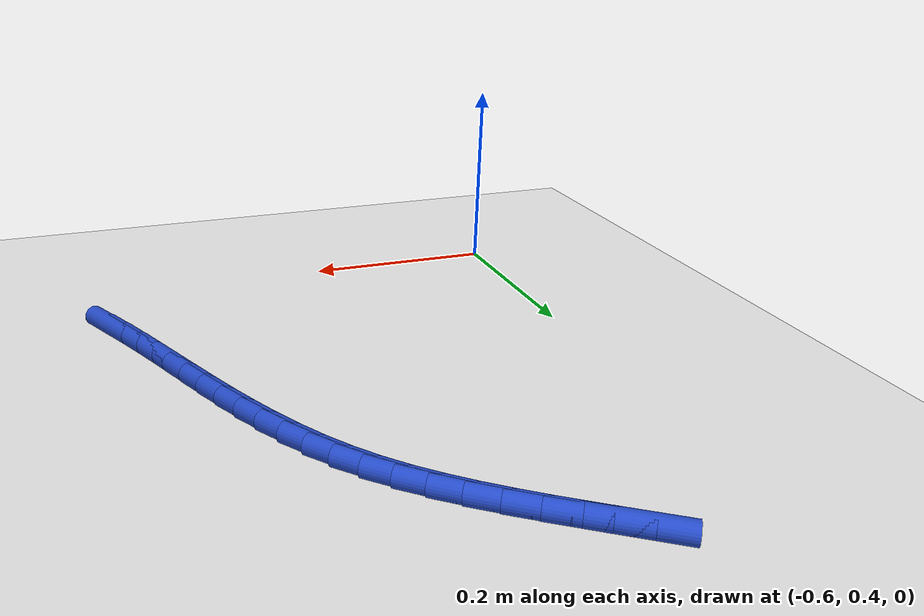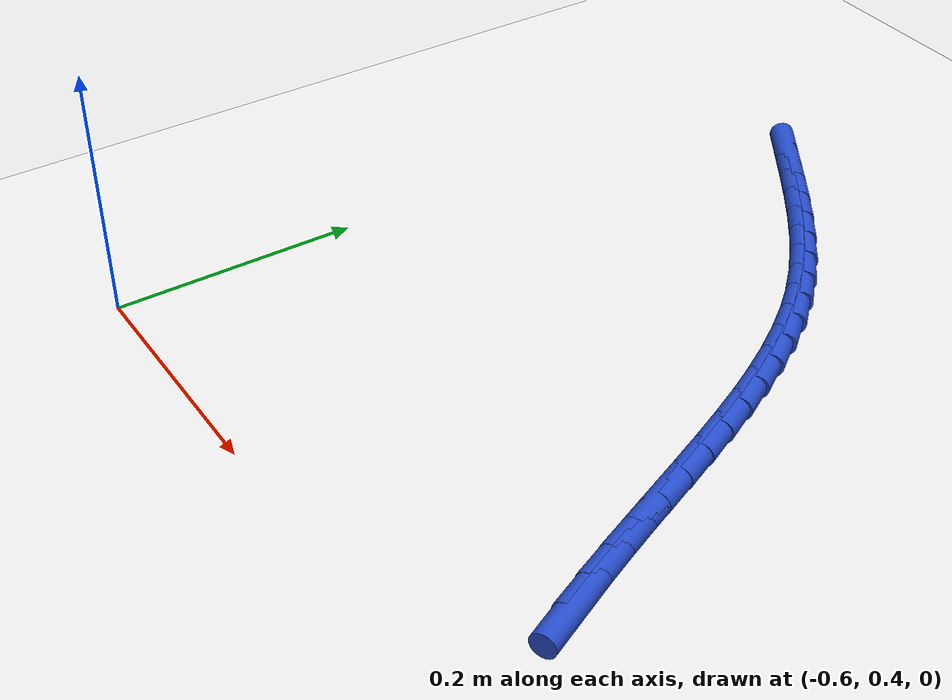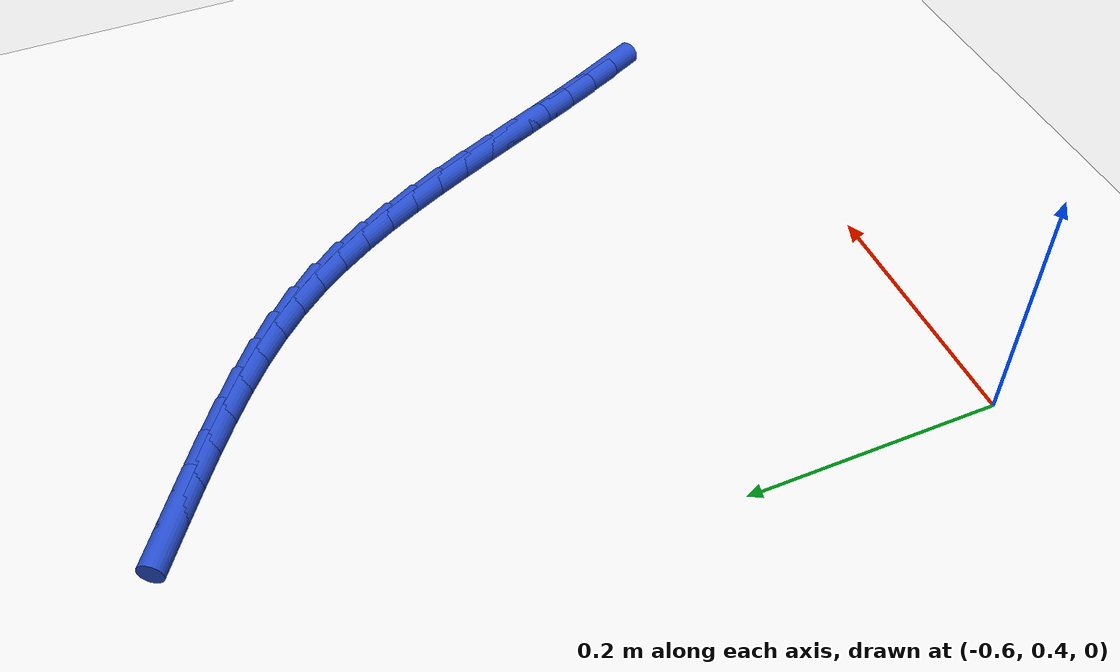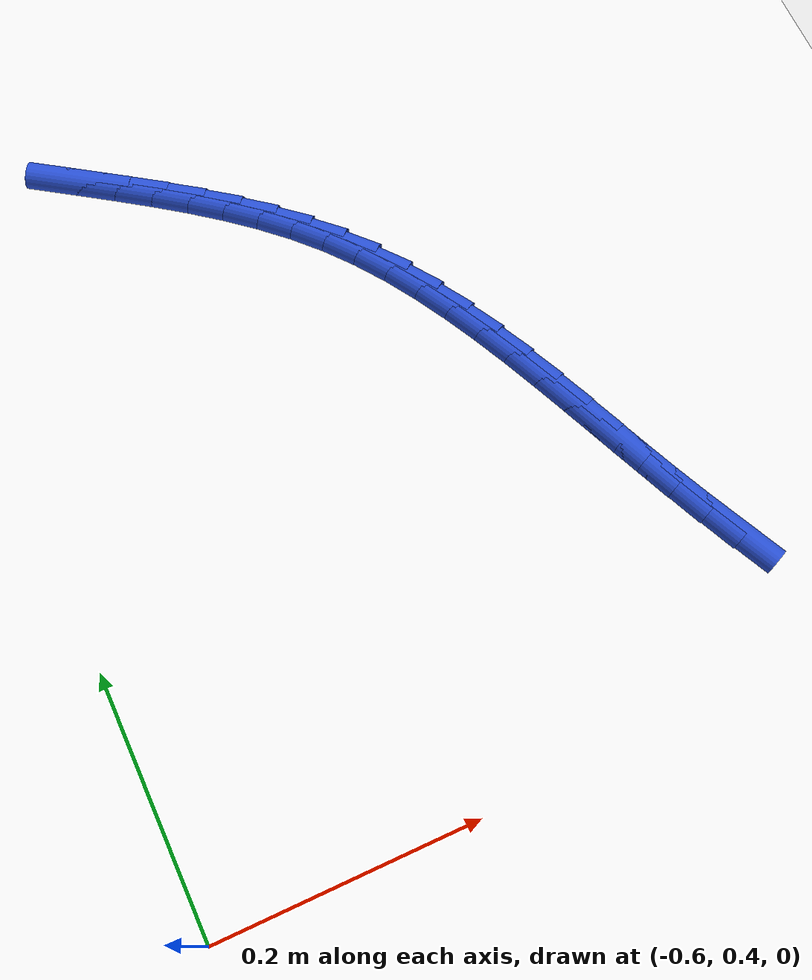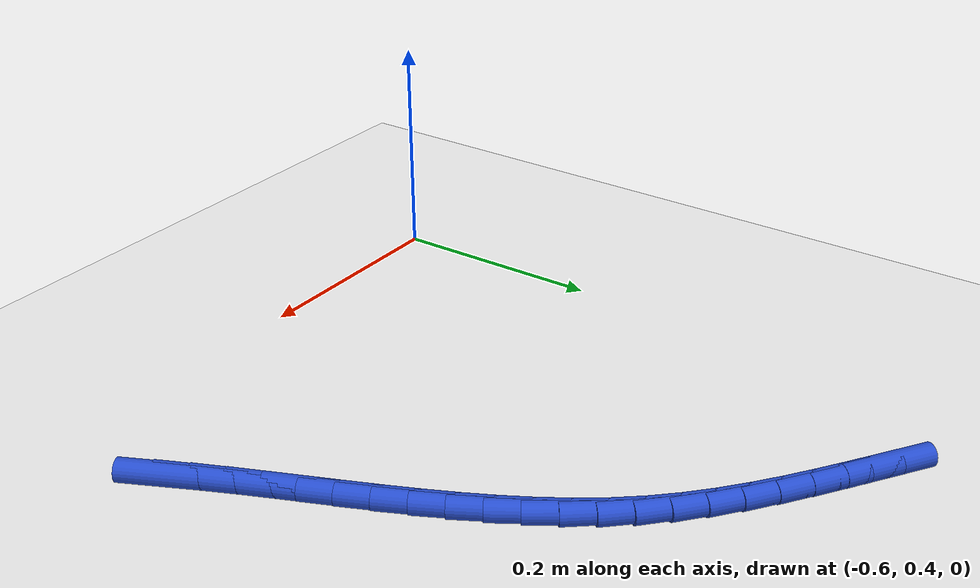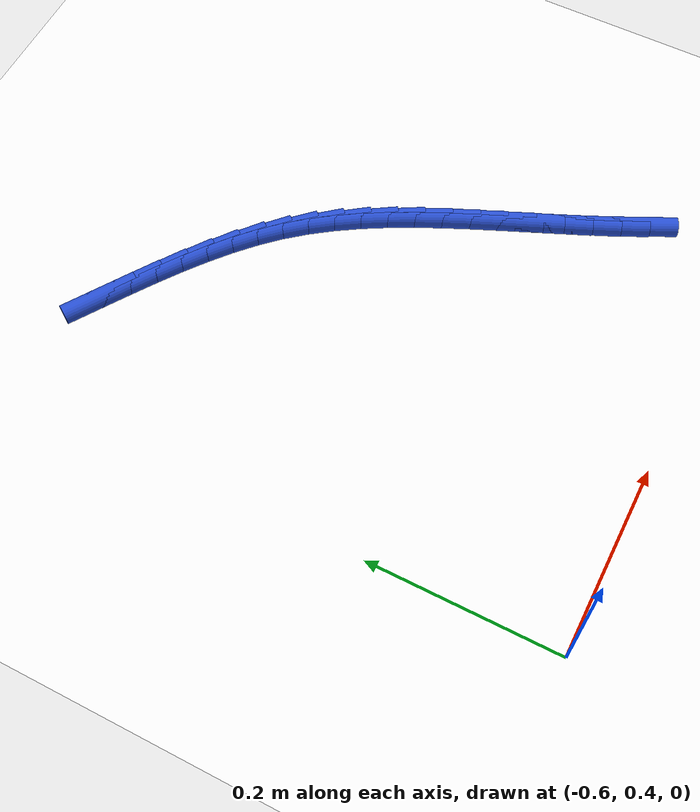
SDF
<sdf version="1.6">
 <world name="default">
  <model name="ground_plane">
   <static>1</static>
   <link name="link">
    <collision name="collision">
     <geometry><plane><normal>0 0 1</normal><size>100 100</size></plane></geometry>
     <surface><friction><ode><mu>100</mu><mu2>50</mu2></ode></friction></surface>
    </collision>
    <visual name="visual">
     <cast_shadows>0</cast_shadows>
     <geometry><plane><normal>0 0 1</normal><size>100 100</size></plane></geometry>
     <material>
      <script><uri>file://media/materials/scripts/gazebo.material</uri><name>Gazebo/WhiteGlow</name></script>
     </material>
    </visual>
   </link>
  </model>
  <model name="line">
   <link name="link_19">
    <pose>-0.15202798051636007 0.5097675520749214 0.01 0 1.57 -1.1237885111083326</pose>
    <collision name="collision">
     <geometry><cylinder><radius>0.01</radius><length>0.08</length></cylinder></geometry>
    </collision>
    <visual name="visual">
     <material>
      <script><name>Gazebo/Blue</name><uri>file://media/materials/scripts/gazebo.material</uri></script>
     </material>
     <geometry><cylinder><radius>0.01</radius><length>0.08</length></cylinder></geometry>
    </visual>
   </link>
   <link name="link_20">
    <pose>-0.1645418085531885 0.5358722899567145 0.01 0 1.57 -1.1443840696282837</pose>
    <collision name="collision">
     <geometry><cylinder><radius>0.01</radius><length>0.08</length></cylinder></geometry>
    </collision>
    <visual name="visual">
     <material>
      <script><name>Gazebo/Blue</name><uri>file://media/materials/scripts/gazebo.material</uri></script>
     </material>
     <geometry><cylinder><radius>0.01</radius><length>0.08</length></cylinder></geometry>
    </visual>
   </link>
   <link name="link_21">
    <pose>-0.17656451619382074 0.5623373662047823 0.01 0 1.57 -1.1601407667916381</pose>
    <collision name="collision">
     <geometry><cylinder><radius>0.01</radius><length>0.08</length></cylinder></geometry>
    </collision>
    <visual name="visual">
     <material>
      <script><name>Gazebo/Blue</name><uri>file://media/materials/scripts/gazebo.material</uri></script>
     </material>
     <geometry><cylinder><radius>0.01</radius><length>0.08</length></cylinder></geometry>
    </visual>
   </link>
   <link name="link_22">
    <pose>-0.18820005609602605 0.589060495800236 0.01 0 1.57 -1.1683401843044885</pose>
    <collision name="collision">
     <geometry><cylinder><radius>0.01</radius><length>0.08</length></cylinder></geometry>
    </collision>
    <visual name="visual">
     <material>
      <script><name>Gazebo/Blue</name><uri>file://media/materials/scripts/gazebo.material</uri></script>
     </material>
     <geometry><cylinder><radius>0.01</radius><length>0.08</length></cylinder></geometry>
    </visual>
   </link>
   <link name="link_23">
    <pose>-0.19962197544693255 0.615891948713402 0.01 0 1.57 -1.1690486684555863</pose>
    <collision name="collision">
     <geometry><cylinder><radius>0.01</radius><length>0.08</length></cylinder></geometry>
    </collision>
    <visual name="visual">
     <material>
      <script><name>Gazebo/Blue</name><uri>file://media/materials/scripts/gazebo.material</uri></script>
     </material>
     <geometry><cylinder><radius>0.01</radius><length>0.08</length></cylinder></geometry>
    </visual>
   </link>
   <link name="link_24">
    <pose>-0.211003847665836 0.6426819770312251 0.01 0 1.57 -1.1622295150099458</pose>
    <collision name="collision">
     <geometry><cylinder><radius>0.01</radius><length>0.08</length></cylinder></geometry>
    </collision>
    <visual name="visual">
     <material>
      <script><name>Gazebo/Blue</name><uri>file://media/materials/scripts/gazebo.material</uri></script>
     </material>
     <geometry><cylinder><radius>0.01</radius><length>0.08</length></cylinder></geometry>
    </visual>
   </link>
   <link name="link_25">
    <pose>-0.22251924617203203 0.6692808328406501 0.01 0 1.57 -1.1477388641497936</pose>
    <collision name="collision">
     <geometry><cylinder><radius>0.01</radius><length>0.08</length></cylinder></geometry>
    </collision>
    <visual name="visual">
     <material>
      <script><name>Gazebo/Blue</name><uri>file://media/materials/scripts/gazebo.material</uri></script>
     </material>
     <geometry><cylinder><radius>0.01</radius><length>0.08</length></cylinder></geometry>
    </visual>
   </link>
   <link name="link_26">
    <pose>-0.23434174438481659 0.6955387682286218 0.01 0 1.57 -1.1253322727199992</pose>
    <collision name="collision">
     <geometry><cylinder><radius>0.01</radius><length>0.08</length></cylinder></geometry>
    </collision>
    <visual name="visual">
     <material>
      <script><name>Gazebo/Blue</name><uri>file://media/materials/scripts/gazebo.material</uri></script>
     </material>
     <geometry><cylinder><radius>0.01</radius><length>0.08</length></cylinder></geometry>
    </visual>
   </link>
   <link name="link_27">
    <pose>-0.24664491572348524 0.7213060352820849 0.01 0 1.57 -1.0946834402532364</pose>
    <collision name="collision">
     <geometry><cylinder><radius>0.01</radius><length>0.08</length></cylinder></geometry>
    </collision>
    <visual name="visual">
     <material>
      <script><name>Gazebo/Blue</name><uri>file://media/materials/scripts/gazebo.material</uri></script>
     </material>
     <geometry><cylinder><radius>0.01</radius><length>0.08</length></cylinder></geometry>
    </visual>
   </link>
   <link name="link_28">
    <pose>-0.25960233360733403 0.7464328860879847 0.01 0 1.57 -1.0554199955556023</pose>
    <collision name="collision">
     <geometry><cylinder><radius>0.01</radius><length>0.08</length></cylinder></geometry>
    </collision>
    <visual name="visual">
     <material>
      <script><name>Gazebo/Blue</name><uri>file://media/materials/scripts/gazebo.material</uri></script>
     </material>
     <geometry><cylinder><radius>0.01</radius><length>0.08</length></cylinder></geometry>
    </visual>
   </link>
   <link name="link_29">
    <pose>-0.27338757145565856 0.7707695727332661 0.01 0 1.57 -1.0071831119404284</pose>
    <collision name="collision">
     <geometry><cylinder><radius>0.01</radius><length>0.08</length></cylinder></geometry>
    </collision>
    <visual name="visual">
     <material>
      <script><name>Gazebo/Blue</name><uri>file://media/materials/scripts/gazebo.material</uri></script>
     </material>
     <geometry><cylinder><radius>0.01</radius><length>0.08</length></cylinder></geometry>
    </visual>
   </link>
   <link name="link_30">
    <pose>-0.2881742026877546 0.7941663473048736 0.01 0 1.57 -0.9497178227277111</pose>
    <collision name="collision">
     <geometry><cylinder><radius>0.01</radius><length>0.08</length></cylinder></geometry>
    </collision>
    <visual name="visual">
     <material>
      <script><name>Gazebo/Blue</name><uri>file://media/materials/scripts/gazebo.material</uri></script>
     </material>
     <geometry><cylinder><radius>0.01</radius><length>0.08</length></cylinder></geometry>
    </visual>
   </link>
   <link name="link_31">
    <pose>-0.304135800722918 0.816473461889752 0.01 0 1.57 -0.8830179331825097</pose>
    <collision name="collision">
     <geometry><cylinder><radius>0.01</radius><length>0.08</length></cylinder></geometry>
    </collision>
    <visual name="visual">
     <material>
      <script><name>Gazebo/Blue</name><uri>file://media/materials/scripts/gazebo.material</uri></script>
     </material>
     <geometry><cylinder><radius>0.01</radius><length>0.08</length></cylinder></geometry>
    </visual>
   </link>
   <link name="link_32">
    <pose>-0.3214455577959444 0.837541607221992 0.01 0 1.57 -0.8123300044781248</pose>
    <collision name="collision">
     <geometry><cylinder><radius>0.01</radius><length>0.08</length></cylinder></geometry>
    </collision>
    <visual name="visual">
     <material>
      <script><name>Gazebo/Blue</name><uri>file://media/materials/scripts/gazebo.material</uri></script>
     </material>
     <geometry><cylinder><radius>0.01</radius><length>0.08</length></cylinder></geometry>
    </visual>
   </link>
   <link name="link_33">
    <pose>-0.3401887800847428 0.8573226087040168 0.01 0 1.57 -0.7496124533951917</pose>
    <collision name="collision">
     <geometry><cylinder><radius>0.01</radius><length>0.08</length></cylinder></geometry>
    </collision>
    <visual name="visual">
     <material>
      <script><name>Gazebo/Blue</name><uri>file://media/materials/scripts/gazebo.material</uri></script>
     </material>
     <geometry><cylinder><radius>0.01</radius><length>0.08</length></cylinder></geometry>
    </visual>
   </link>
   <link name="link_34">
    <pose>-0.3602510944996789 0.875998072174546 0.01 0 1.57 -0.6970603639408066</pose>
    <collision name="collision">
     <geometry><cylinder><radius>0.01</radius><length>0.08</length></cylinder></geometry>
    </collision>
    <visual name="visual">
     <material>
      <script><name>Gazebo/Blue</name><uri>file://media/materials/scripts/gazebo.material</uri></script>
     </material>
     <geometry><cylinder><radius>0.01</radius><length>0.08</length></cylinder></geometry>
    </visual>
   </link>
   <link name="link_35">
    <pose>-0.38149054413228434 0.8937813454854017 0.01 0 1.57 -0.6548518049781613</pose>
    <collision name="collision">
     <geometry><cylinder><radius>0.01</radius><length>0.08</length></cylinder></geometry>
    </collision>
    <visual name="visual">
     <material>
      <script><name>Gazebo/Blue</name><uri>file://media/materials/scripts/gazebo.material</uri></script>
     </material>
     <geometry><cylinder><radius>0.01</radius><length>0.08</length></cylinder></geometry>
    </visual>
   </link>
   <link name="link_36">
    <pose>-0.4037651720740903 0.910885776488405 0.01 0 1.57 -0.6228305214378709</pose>
    <collision name="collision">
     <geometry><cylinder><radius>0.01</radius><length>0.08</length></cylinder></geometry>
    </collision>
    <visual name="visual">
     <material>
      <script><name>Gazebo/Blue</name><uri>file://media/materials/scripts/gazebo.material</uri></script>
     </material>
     <geometry><cylinder><radius>0.01</radius><length>0.08</length></cylinder></geometry>
    </visual>
   </link>
   <link name="link_37">
    <pose>-0.42693302141662837 0.9275247130353775 0.01 0 1.57 -0.6006502645675779</pose>
    <collision name="collision">
     <geometry><cylinder><radius>0.01</radius><length>0.08</length></cylinder></geometry>
    </collision>
    <visual name="visual">
     <material>
      <script><name>Gazebo/Blue</name><uri>file://media/materials/scripts/gazebo.material</uri></script>
     </material>
     <geometry><cylinder><radius>0.01</radius><length>0.08</length></cylinder></geometry>
    </visual>
   </link>
   <link name="link_38">
    <pose>-0.45085213525143025 0.9439115029781415 0.01 0 1.57 -0.5878815166539876</pose>
    <collision name="collision">
     <geometry><cylinder><radius>0.01</radius><length>0.08</length></cylinder></geometry>
    </collision>
    <visual name="visual">
     <material>
      <script><name>Gazebo/Blue</name><uri>file://media/materials/scripts/gazebo.material</uri></script>
     </material>
     <geometry><cylinder><radius>0.01</radius><length>0.08</length></cylinder></geometry>
    </visual>
   </link>
   <link name="link_39">
    <pose>-0.4753805566700272 0.9602594941685182 0.01 0 1.57 -0.5840785848746476</pose>
    <collision name="collision">
     <geometry><cylinder><radius>0.01</radius><length>0.08</length></cylinder></geometry>
    </collision>
    <visual name="visual">
     <material>
      <script><name>Gazebo/Blue</name><uri>file://media/materials/scripts/gazebo.material</uri></script>
     </material>
     <geometry><cylinder><radius>0.01</radius><length>0.08</length></cylinder></geometry>
    </visual>
   </link>
  </model>
 </world>
</sdf>
